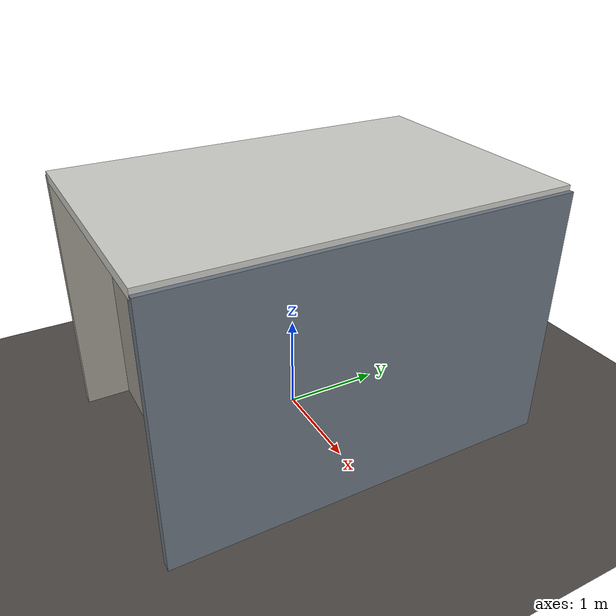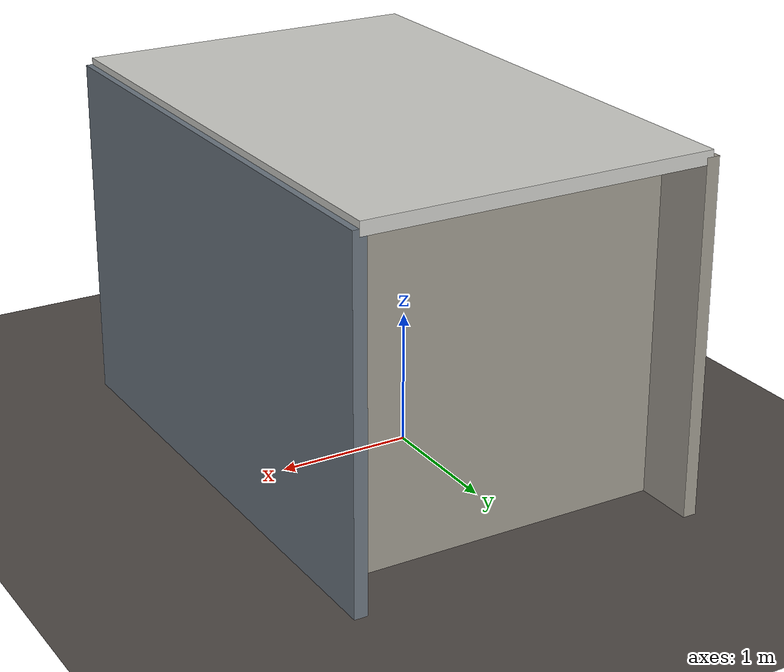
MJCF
<mujoco model="xarm_table">
  <statistic center="0.3 0 0.4" extent=".65"/>

  <visual>
    <headlight diffuse="0.6 0.6 0.6" ambient="0.35 0.35 0.35" specular="0.1 0.1 0.1"/>
    <rgba haze="0.26 0.27 0.29 1"/>
    <global azimuth="150" elevation="-20"/>
  </visual>

  <asset>
    <texture type="2d" name="groundplane" builtin="checker" mark="edge"
      rgb1="0.33 0.31 0.29" rgb2="0.28 0.26 0.25" markrgb="0.38 0.36 0.34"
      width="300" height="300"/>
    <material name="groundplane" texture="groundplane" texuniform="true" texrepeat="4 4"
      reflectance="0.05"/>
    <material name="wall" rgba="0.62 0.60 0.56 1"/>
    <material name="wall_back" rgba="0.42 0.46 0.50 1"/>
    <material name="ceiling" rgba="0.80 0.80 0.78 1"/>
    <material name="table_top" rgba="0.55 0.45 0.35 1"/>
    <material name="table_leg" rgba="0.4 0.35 0.3 1"/>
    <material name="apple_red" rgba="0.85 0.1 0.1 1"/>
    <material name="orange" rgba="1.0 0.55 0.0 1"/>
    <material name="cup_beige" rgba="0.9 0.85 0.75 1"/>
  </asset>

  <default>
    <!-- Graspable items: same contact parameters as the xarm_grasp_sim scene. -->
    <default class="obj">
      <geom friction="1.0 0.02 0.001" solimp="0.95 0.99 0.001" solref="0.004 1"/>
    </default>
  </default>

  <worldbody>
    <light pos="0 0 2.2" dir="0 0 -1" directional="true" diffuse="0.5 0.5 0.5"/>
    <light pos="1.0 0.8 1.8" dir="-0.5 -0.4 -1" diffuse="0.35 0.35 0.35"/>

    <geom name="floor" size="0 0 0.05" type="plane" material="groundplane"/>

    <!-- Enclosed room so the wrist camera sees walls past the table edge, not sky. -->
    <geom name="wall_back" type="box" size="0.05 2.0 1.3" pos="1.5 0 1.3" material="wall_back"/>
    <geom name="wall_front" type="box" size="0.05 2.0 1.3" pos="-1.1 0 1.3" material="wall"/>
    <geom name="wall_left" type="box" size="1.3 0.05 1.3" pos="0.2 1.5 1.3" material="wall"/>
    <geom name="wall_right" type="box" size="1.3 0.05 1.3" pos="0.2 -1.5 1.3" material="wall"/>
    <geom name="ceiling" type="box" size="1.3 2.0 0.05" pos="0.2 0 2.6" material="ceiling"/>

    <!-- Table ahead of the arm base: top at z=0.13, x 0.30..0.60, y -0.20..0.20. -->
    <geom name="table_top" type="box" size="0.15 0.20 0.01" pos="0.45 0 0.12" material="table_top"/>
    <geom name="table_leg1" type="cylinder" size="0.02 0.055" pos="0.32 -0.18 0.055" material="table_leg"/>
    <geom name="table_leg2" type="cylinder" size="0.02 0.055" pos="0.58 -0.18 0.055" material="table_leg"/>
    <geom name="table_leg3" type="cylinder" size="0.02 0.055" pos="0.32  0.18 0.055" material="table_leg"/>
    <geom name="table_leg4" type="cylinder" size="0.02 0.055" pos="0.58  0.18 0.055" material="table_leg"/>

    <!-- Free bodies resting on the table top (1 mm clearance). -->
    <body name="apple" pos="0.40 0.08 0.171">
      <freejoint/>
      <geom class="obj" type="sphere" size="0.04" material="apple_red" mass="0.15"/>
    </body>
    <body name="orange" pos="0.45 -0.08 0.176">
      <freejoint/>
      <geom class="obj" type="sphere" size="0.045" material="orange" mass="0.18"/>
    </body>
    <body name="cup" pos="0.50 0.0 0.191">
      <freejoint/>
      <geom class="obj" type="cylinder" size="0.035 0.06" material="cup_beige" mass="0.2"/>
    </body>
  </worldbody>
</mujoco>
